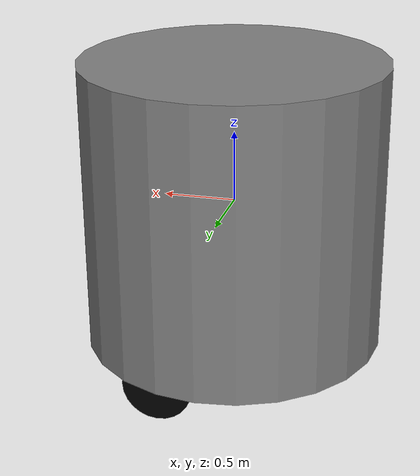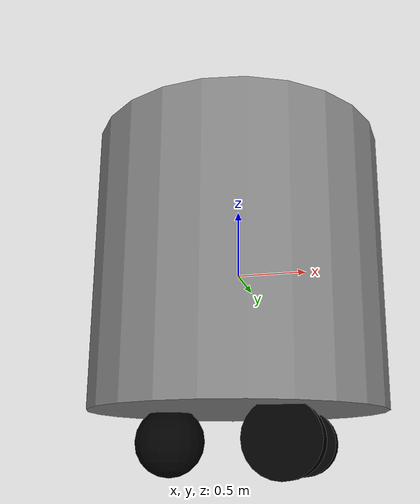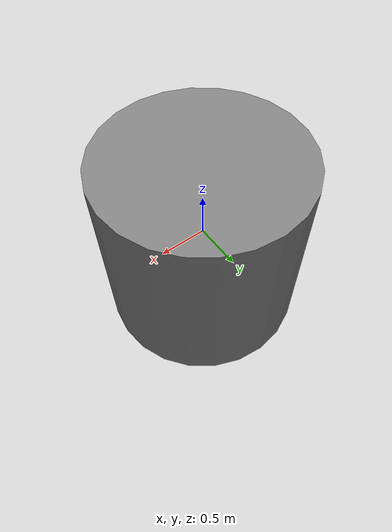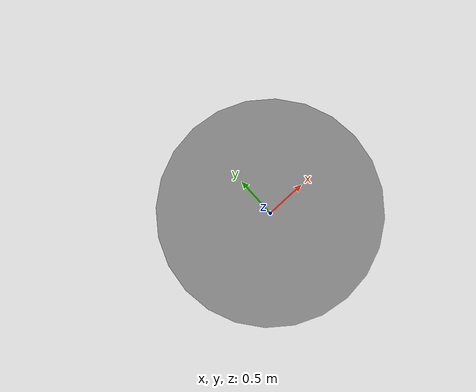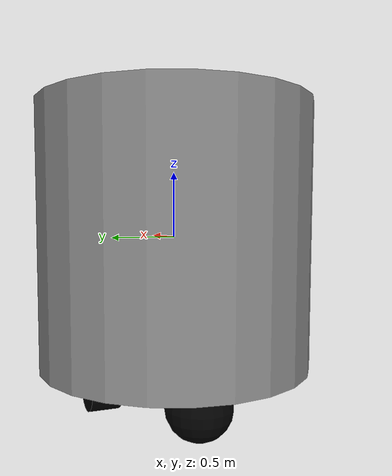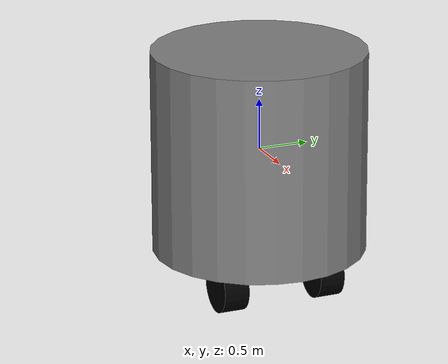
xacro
<?xml version="1.0" encoding="utf-8"?>
<!-- |    This document was autogenerated by xacro from ../ex00/robot.urdf             | -->
<!-- |    EDITING THIS FILE BY HAND IS NOT RECOMMENDED                                 | -->
<robot name="robot">
  <material name="gray">
    <color rgba="0.5 0.5 0.5 1"/>
  </material>
  <material name="black">
    <color rgba="0 0 0 1"/>
  </material>
  <link name="base_link">
    <visual>
      <geometry>
        <cylinder length="2.0" radius="1.05"/>
      </geometry>
      <material name="gray"/>
    </visual>
    <collision>
      <geometry>
        <cylinder length="2.0" radius="1.05"/>
      </geometry>
    </collision>
    <inertial>
      <mass value="20"/>
      <inertia ixx="15.05" ixy="0.0" ixz="0.0" iyy="15.05" iyz="0.0" izz="11.05"/>
    </inertial>
  </link>
  <link name="right_wheel">
    <visual>
      <geometry>
        <cylinder length="0.25" radius="0.25"/>
      </geometry>
      <origin rpy="1.57075 1.57075 0"/>
      <material name="black"/>
    </visual>
    <collision>
      <geometry>
        <cylinder length="0.25" radius="0.25"/>
      </geometry>
      <origin rpy="1.57075 1.57075 0"/>
    </collision>
    <inertial>
      <mu value="0.5"/>
      <mass value="4"/>
      <inertia ixx="0.52" ixy="0.0" ixz="0.0" iyy="0.52" iyz="0.0" izz="0.125"/>
    </inertial>
  </link>
  <joint name="right_wheel_to_base_link" type="continuous">
    <parent link="base_link"/>
    <child link="right_wheel"/>
    <axis xyz="0 1 0"/>
    <origin xyz="0.4 0.5 -1.2"/>
  </joint>
  <link name="left_wheel">
    <visual>
      <geometry>
        <cylinder length="0.25" radius="0.25"/>
      </geometry>
      <origin rpy="1.57075 1.57075 0"/>
      <material name="black"/>
    </visual>
    <collision>
      <geometry>
        <cylinder length="0.25" radius="0.25"/>
      </geometry>
    </collision>
    <inertial>
      <mu value="0.5"/>
      <mass value="4"/>
      <inertia ixx="0.52" ixy="0.0" ixz="0.0" iyy="0.52" iyz="0.0" izz="0.125"/>
    </inertial>
  </link>
  <joint name="left_wheel_to_base_link" type="continuous">
    <parent link="base_link"/>
    <child link="left_wheel"/>
    <axis xyz="0 1 0"/>
    <origin xyz="0.4 -0.5 -1.2"/>
  </joint>
  <link name="custer_x">
    <visual>
      <geometry>
        <sphere radius="0.25"/>
      </geometry>
      <origin rpy="0 0 0"/>
      <material name="black"/>
    </visual>
    <collision>
      <geometry>
        <sphere radius="0.25"/>
      </geometry>
    </collision>
    <inertial>
      <mu value="0.1"/>
      <mass value="5"/>
      <inertia ixx="0.125" ixy="0.0" ixz="0.0" iyy="0.125" iyz="0.0" izz="0.125"/>
    </inertial>
  </link>
  <joint name="custer_x_to_base_link" type="continuous">
    <parent link="base_link"/>
    <child link="custer_x"/>
    <axis xyz="1 0 0"/>
    <origin xyz="-0.5 0.0 -1.2"/>
  </joint>
  <link name="custer_y">
    <visual>
      <geometry>
        <sphere radius="0.25"/>
      </geometry>
      <origin rpy="0 0 0"/>
      <material name="black"/>
    </visual>
    <collision>
      <geometry>
        <sphere radius="0.25"/>
      </geometry>
    </collision>
    <inertial>
      <mu value="0.1"/>
      <mass value="5"/>
      <inertia ixx="0.125" ixy="0.0" ixz="0.0" iyy="0.125" iyz="0.0" izz="0.125"/>
    </inertial>
  </link>
  <joint name="custer_y_to_base_link" type="continuous">
    <parent link="base_link"/>
    <child link="custer_y"/>
    <axis xyz="0 1 0"/>
    <origin xyz="-0.5 0.0 -1.2"/>
  </joint>
  <link name="custer_z">
    <visual>
      <geometry>
        <sphere radius="0.25"/>
      </geometry>
      <origin rpy="0 0 0"/>
      <material name="black"/>
    </visual>
    <collision>
      <geometry>
        <sphere radius="0.25"/>
      </geometry>
    </collision>
    <inertial>
      <mu value="0.1"/>
      <mass value="5"/>
      <inertia ixx="0.125" ixy="0.0" ixz="0.0" iyy="0.125" iyz="0.0" izz="0.125"/>
    </inertial>
  </link>
  <joint name="custer_z_to_base_link" type="continuous">
    <parent link="base_link"/>
    <child link="custer_z"/>
    <axis xyz="0 0 1"/>
    <origin xyz="-0.5 0.0 -1.2"/>
  </joint>
</robot>
